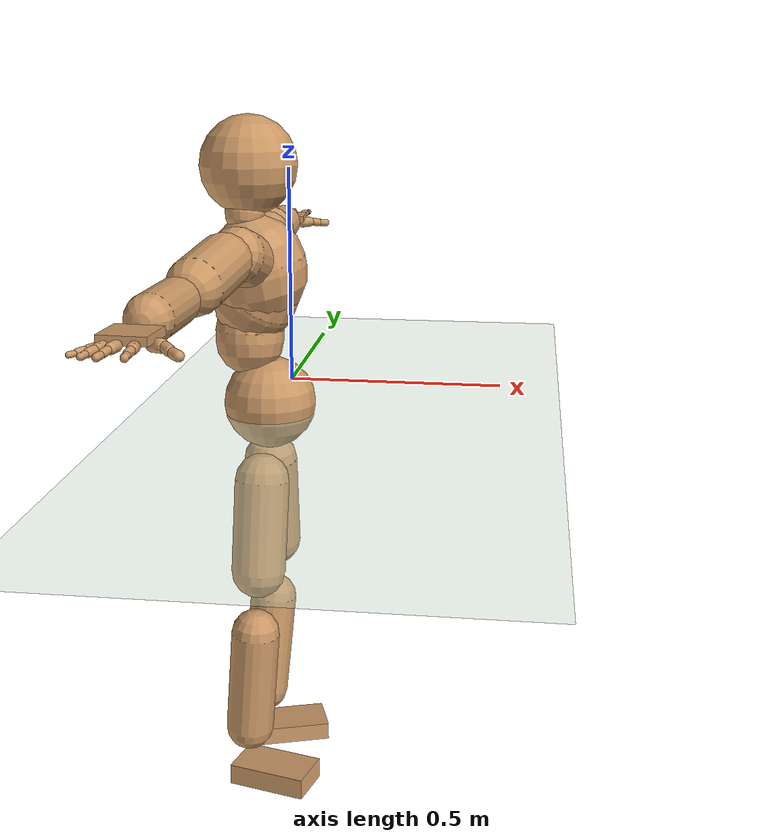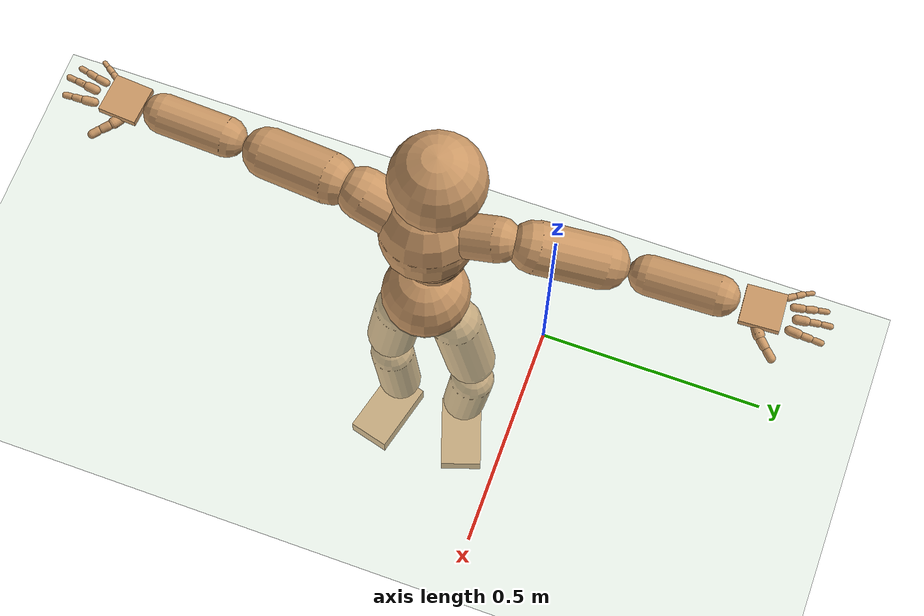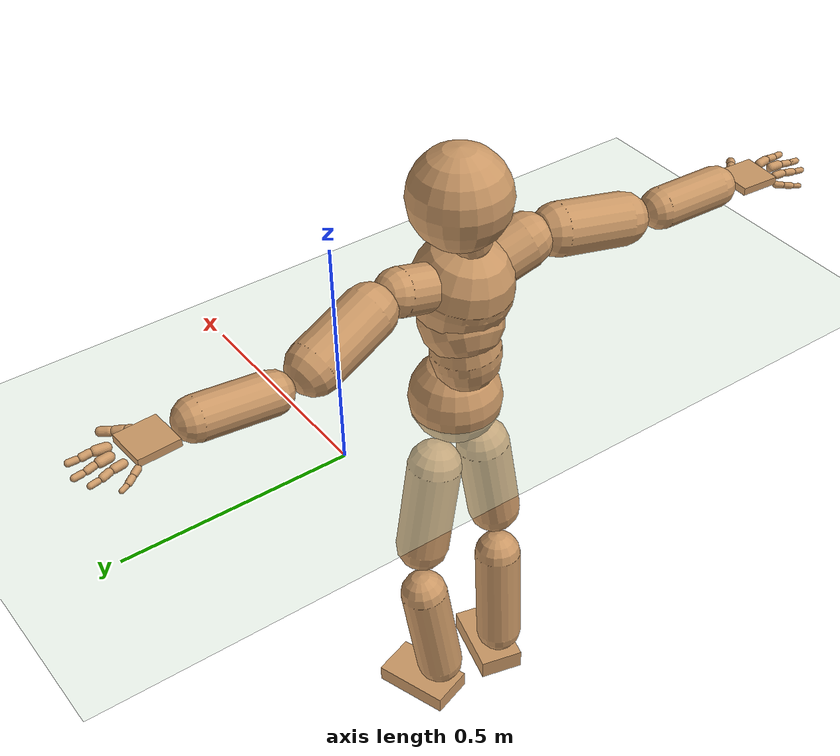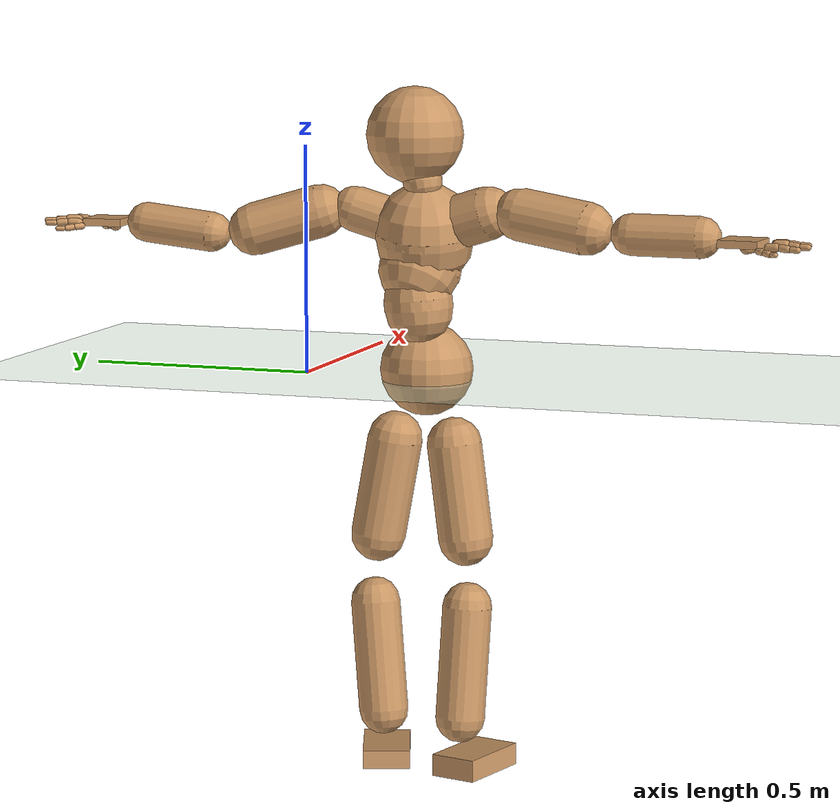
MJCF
<mujoco model="humanoid">
  <compiler coordinate="local" angle="radian"/>
  <default>
    <joint damping="0.0" armature="0.01" stiffness="0.0" limited="true"/>
    <geom conaffinity="1" condim="3" contype="7" margin="0.001" rgba="0.8 0.6 .4 1"/>
  </default>
  <asset>
    <texture type="skybox" builtin="gradient" rgb1=".4 .5 .6" rgb2="0 0 0" width="100" height="100"/>
    <texture builtin="flat" height="1278" mark="cross" markrgb="1 1 1" name="texgeom" random="0.01" rgb1="0.8 0.6 0.4" rgb2="0.8 0.6 0.4" type="cube" width="127"/>
    <texture builtin="checker" height="100" name="texplane" rgb1="0 0 0" rgb2="0.8 0.8 0.8" type="2d" width="100"/>
    <material name="MatPlane" reflectance="0.5" shininess="1" specular="1" texrepeat="60 60" texture="texplane"/>
    <material name="geom" texture="texgeom" texuniform="true"/>
  </asset>
  <worldbody>
    <light cutoff="100" diffuse="1 1 1" dir="-0 0 -1.3" directional="true" exponent="1" pos="0 0 1.3" specular=".1 .1 .1"/>
    <geom conaffinity="1" condim="3" name="floor" pos="0 0 0" rgba="0.8 0.9 0.8 1" size="100 100 .2" type="plane" material="MatPlane"/>
    <body name="Pelvis" pos="0.0015 -0.2783 0.0221">
      <freejoint name="Pelvis"/>
      <geom type="sphere" contype="1" conaffinity="1" density="500" size="0.1013" pos="0.0000 0.0000 0.0000" name="Pelvis"/>
      <body name="L_Hip" pos="-0.0146 0.0547 -0.0826">
        <joint name="L_Hip_x" type="hinge" pos="0 0 0" axis="1 0 0" stiffness="800" damping="80" armature="0.02" range="-180.0000 180.0000"/>
        <joint name="L_Hip_y" type="hinge" pos="0 0 0" axis="0 1 0" stiffness="800" damping="80" armature="0.02" range="-180.0000 180.0000"/>
        <joint name="L_Hip_z" type="hinge" pos="0 0 0" axis="0 0 1" stiffness="800" damping="80" armature="0.02" range="-180.0000 180.0000"/>
        <geom type="capsule" contype="1" conaffinity="1" density="500" fromto="-0.0005 0.0128 -0.0715 -0.0022 0.0512 -0.2860" size="0.0599" name="L_Hip"/>
        <body name="L_Knee" pos="-0.0027 0.064 -0.3575">
          <joint name="L_Knee_x" type="hinge" pos="0 0 0" axis="1 0 0" stiffness="800" damping="80" armature="0.02" range="-180.0000 180.0000"/>
          <joint name="L_Knee_y" type="hinge" pos="0 0 0" axis="0 1 0" stiffness="800" damping="80" armature="0.02" range="-180.0000 180.0000"/>
          <joint name="L_Knee_z" type="hinge" pos="0 0 0" axis="0 0 1" stiffness="800" damping="80" armature="0.02" range="-180.0000 180.0000"/>
          <geom type="capsule" contype="1" conaffinity="1" density="500" fromto="-0.0069 -0.0085 -0.0790 -0.0276 -0.0341 -0.3160" size="0.0542" name="L_Knee"/>
          <body name="L_Ankle" pos="-0.0345 -0.0426 -0.395">
            <joint name="L_Ankle_x" type="hinge" pos="0 0 0" axis="1 0 0" stiffness="800" damping="80" armature="0.02" range="-180.0000 180.0000"/>
            <joint name="L_Ankle_y" type="hinge" pos="0 0 0" axis="0 1 0" stiffness="800" damping="80" armature="0.02" range="-180.0000 180.0000"/>
            <joint name="L_Ankle_z" type="hinge" pos="0 0 0" axis="0 0 1" stiffness="800" damping="80" armature="0.02" range="-180.0000 180.0000"/>
            <geom type="box" contype="1" conaffinity="1" density="500" pos="0.0632 0.0212 -0.0279" size="0.0901 0.0516 0.0204" quat="0.9870 0.0000 0.0000 0.1609" name="L_Ankle"/>
            <body name="L_Toe" pos="0.1264 0.0423 -0.0557">
              <joint name="L_Toe_x" type="hinge" pos="0 0 0" axis="1 0 0" stiffness="500" damping="50" armature="0.02" range="-180.0000 180.0000"/>
              <joint name="L_Toe_y" type="hinge" pos="0 0 0" axis="0 1 0" stiffness="500" damping="50" armature="0.02" range="-180.0000 180.0000"/>
              <joint name="L_Toe_z" type="hinge" pos="0 0 0" axis="0 0 1" stiffness="500" damping="50" armature="0.02" range="-180.0000 180.0000"/>
              <geom type="box" contype="1" conaffinity="1" density="500" pos="0.0000 0.0000 0.0292" size="0.001 0.0025 0.0011" quat="0.9862 0.0000 0.0000 0.1655" name="L_Toe"/>
            </body>
          </body>
        </body>
      </body>
      <body name="R_Hip" pos="-0.0066 -0.0567 -0.0933">
        <joint name="R_Hip_x" type="hinge" pos="0 0 0" axis="1 0 0" stiffness="800" damping="80" armature="0.02" range="-180.0000 180.0000"/>
        <joint name="R_Hip_y" type="hinge" pos="0 0 0" axis="0 1 0" stiffness="800" damping="80" armature="0.02" range="-180.0000 180.0000"/>
        <joint name="R_Hip_z" type="hinge" pos="0 0 0" axis="0 0 1" stiffness="800" damping="80" armature="0.02" range="-180.0000 180.0000"/>
        <geom type="capsule" contype="1" conaffinity="1" density="500" fromto="-0.0022 -0.0096 -0.0684 -0.0090 -0.0383 -0.2734" size="0.0599" name="R_Hip"/>
        <body name="R_Knee" pos="-0.0112 -0.0479 -0.3418">
          <joint name="R_Knee_x" type="hinge" pos="0 0 0" axis="1 0 0" stiffness="800" damping="80" armature="0.02" range="-180.0000 180.0000"/>
          <joint name="R_Knee_y" type="hinge" pos="0 0 0" axis="0 1 0" stiffness="800" damping="80" armature="0.02" range="-180.0000 180.0000"/>
          <joint name="R_Knee_z" type="hinge" pos="0 0 0" axis="0 0 1" stiffness="800" damping="80" armature="0.02" range="-180.0000 180.0000"/>
          <geom type="capsule" contype="1" conaffinity="1" density="500" fromto="-0.0069 0.0030 -0.0814 -0.0274 0.0118 -0.3256" size="0.0541" name="R_Knee"/>
          <body name="R_Ankle" pos="-0.0343 0.0148 -0.407">
            <joint name="R_Ankle_x" type="hinge" pos="0 0 0" axis="1 0 0" stiffness="800" damping="80" armature="0.02" range="-180.0000 180.0000"/>
            <joint name="R_Ankle_y" type="hinge" pos="0 0 0" axis="0 1 0" stiffness="800" damping="80" armature="0.02" range="-180.0000 180.0000"/>
            <joint name="R_Ankle_z" type="hinge" pos="0 0 0" axis="0 0 1" stiffness="800" damping="80" armature="0.02" range="-180.0000 180.0000"/>
            <geom type="box" contype="1" conaffinity="1" density="500" pos="0.0668 -0.0172 -0.0273" size="0.0901 0.0516 0.0241" quat="0.9921 0.0000 0.0000 -0.1256" name="R_Ankle"/>
            <body name="R_Toe" pos="0.1336 -0.0344 -0.0545">
              <joint name="R_Toe_x" type="hinge" pos="0 0 0" axis="1 0 0" stiffness="500" damping="50" armature="0.02" range="-180.0000 180.0000"/>
              <joint name="R_Toe_y" type="hinge" pos="0 0 0" axis="0 1 0" stiffness="500" damping="50" armature="0.02" range="-180.0000 180.0000"/>
              <joint name="R_Toe_z" type="hinge" pos="0 0 0" axis="0 0 1" stiffness="500" damping="50" armature="0.02" range="-180.0000 180.0000"/>
              <geom type="box" contype="1" conaffinity="1" density="500" pos="0.0000 0.0000 0.0248" size="0.001 0.0025 0.0011" quat="0.9931 0.0000 0.0000 -0.1169" name="R_Toe"/>
            </body>
          </body>
        </body>
      </body>
      <body name="Torso" pos="-0.0435 -0.0006 0.0907">
        <joint name="Torso_x" type="hinge" pos="0 0 0" axis="1 0 0" stiffness="1000" damping="100" armature="0.02" range="-180.0000 180.0000"/>
        <joint name="Torso_y" type="hinge" pos="0 0 0" axis="0 1 0" stiffness="1000" damping="100" armature="0.02" range="-180.0000 180.0000"/>
        <joint name="Torso_z" type="hinge" pos="0 0 0" axis="0 0 1" stiffness="1000" damping="100" armature="0.02" range="-180.0000 180.0000"/>
        <geom type="capsule" contype="1" conaffinity="1" density="500" fromto="0.0005 0.0061 0.0673 0.0003 0.0041 0.0449" size="0.0745" name="Torso"/>
        <body name="Spine" pos="0.0008 0.0102 0.1122">
          <joint name="Spine_x" type="hinge" pos="0 0 0" axis="1 0 0" stiffness="1000" damping="100" armature="0.02" range="-180.0000 180.0000"/>
          <joint name="Spine_y" type="hinge" pos="0 0 0" axis="0 1 0" stiffness="1000" damping="100" armature="0.02" range="-180.0000 180.0000"/>
          <joint name="Spine_z" type="hinge" pos="0 0 0" axis="0 0 1" stiffness="1000" damping="100" armature="0.02" range="-180.0000 180.0000"/>
          <geom type="capsule" contype="1" conaffinity="1" density="500" fromto="0.0182 -0.0054 0.0276 0.0122 -0.0036 0.0184" size="0.0894" name="Spine"/>
          <body name="Chest" pos="0.0304 -0.009 0.046">
            <joint name="Chest_x" type="hinge" pos="0 0 0" axis="1 0 0" stiffness="1000" damping="100" armature="0.02" range="-180.0000 180.0000"/>
            <joint name="Chest_y" type="hinge" pos="0 0 0" axis="0 1 0" stiffness="1000" damping="100" armature="0.02" range="-180.0000 180.0000"/>
            <joint name="Chest_z" type="hinge" pos="0 0 0" axis="0 0 1" stiffness="1000" damping="100" armature="0.02" range="-180.0000 180.0000"/>
            <geom type="capsule" contype="1" conaffinity="1" density="500" fromto="-0.0108 -0.0034 0.0534 -0.0072 -0.0022 0.0356" size="0.1064" name="Chest"/>
            <body name="Neck" pos="-0.0349 -0.0109 0.1373">
              <joint name="Neck_x" type="hinge" pos="0 0 0" axis="1 0 0" stiffness="500" damping="50" armature="0.02" range="-180.0000 180.0000"/>
              <joint name="Neck_y" type="hinge" pos="0 0 0" axis="0 1 0" stiffness="500" damping="50" armature="0.02" range="-180.0000 180.0000"/>
              <joint name="Neck_z" type="hinge" pos="0 0 0" axis="0 0 1" stiffness="500" damping="50" armature="0.02" range="-180.0000 180.0000"/>
              <geom type="capsule" contype="1" conaffinity="1" density="500" fromto="0.0018 0.0048 0.0246 0.0071 0.0194 0.0986" size="0.0424" name="Neck"/>
              <body name="Head" pos="0.0088 0.0242 0.1232">
                <joint name="Head_x" type="hinge" pos="0 0 0" axis="1 0 0" stiffness="500" damping="50" armature="0.02" range="-180.0000 180.0000"/>
                <joint name="Head_y" type="hinge" pos="0 0 0" axis="0 1 0" stiffness="500" damping="50" armature="0.02" range="-180.0000 180.0000"/>
                <joint name="Head_z" type="hinge" pos="0 0 0" axis="0 0 1" stiffness="500" damping="50" armature="0.02" range="-180.0000 180.0000"/>
                <geom type="sphere" contype="1" conaffinity="1" density="500" size="0.1045" pos="0.0000 0.0000 0.0000" name="Head"/>
              </body>
            </body>
            <body name="L_Thorax" pos="-0.0085 0.0422 0.0644">
              <joint name="L_Thorax_x" type="hinge" pos="0 0 0" axis="1 0 0" stiffness="500" damping="50" armature="0.02" range="-180.0000 180.0000"/>
              <joint name="L_Thorax_y" type="hinge" pos="0 0 0" axis="0 1 0" stiffness="500" damping="50" armature="0.02" range="-180.0000 180.0000"/>
              <joint name="L_Thorax_z" type="hinge" pos="0 0 0" axis="0 0 1" stiffness="500" damping="50" armature="0.02" range="-180.0000 180.0000"/>
              <geom type="capsule" contype="1" conaffinity="1" density="500" fromto="-0.0020 0.0275 0.0082 -0.0079 0.1098 0.0328" size="0.0495" name="L_Thorax"/>
              <body name="L_Shoulder" pos="-0.0099 0.1373 0.041">
                <joint name="L_Shoulder_x" type="hinge" pos="0 0 0" axis="1 0 0" stiffness="500" damping="50" armature="0.02" range="-180.0000 180.0000"/>
                <joint name="L_Shoulder_y" type="hinge" pos="0 0 0" axis="0 1 0" stiffness="500" damping="50" armature="0.02" range="-180.0000 180.0000"/>
                <joint name="L_Shoulder_z" type="hinge" pos="0 0 0" axis="0 0 1" stiffness="500" damping="50" armature="0.02" range="-180.0000 180.0000"/>
                <geom type="capsule" contype="1" conaffinity="1" density="500" fromto="-0.0105 0.0473 -0.0138 -0.0419 0.1890 -0.0553" size="0.0573" name="L_Shoulder"/>
                <body name="L_Elbow" pos="-0.0523 0.2363 -0.0691">
                  <joint name="L_Elbow_x" type="hinge" pos="0 0 0" axis="1 0 0" stiffness="500" damping="50" armature="0.02" range="-720.0000 720.0000"/>
                  <joint name="L_Elbow_y" type="hinge" pos="0 0 0" axis="0 1 0" stiffness="500" damping="50" armature="0.02" range="-720.0000 720.0000"/>
                  <joint name="L_Elbow_z" type="hinge" pos="0 0 0" axis="0 0 1" stiffness="500" damping="50" armature="0.02" range="-720.0000 720.0000"/>
                  <geom type="capsule" contype="1" conaffinity="1" density="500" fromto="0.0005 0.0505 0.0053 0.0021 0.2021 0.0213" size="0.0438" name="L_Elbow"/>
                  <body name="L_Wrist" pos="0.0027 0.2527 0.0266">
                    <joint name="L_Wrist_x" type="hinge" pos="0 0 0" axis="1 0 0" stiffness="300" damping="30" armature="0.02" range="-180.0000 180.0000"/>
                    <joint name="L_Wrist_y" type="hinge" pos="0 0 0" axis="0 1 0" stiffness="300" damping="30" armature="0.02" range="-180.0000 180.0000"/>
                    <joint name="L_Wrist_z" type="hinge" pos="0 0 0" axis="0 0 1" stiffness="300" damping="30" armature="0.02" range="-180.0000 180.0000"/>
                    <geom type="box" contype="1" conaffinity="1" density="500" pos="-0.0024 0.0426 -0.0053" size="0.0431 0.0428 0.0082" quat="0.7268 0.0000 0.0000 -0.6869" name="L_Wrist"/>
                    <body name="L_Index1" pos="0.0231 0.1006 -0.0071">
                      <joint name="L_Index1_x" type="hinge" pos="0 0 0" axis="1 0 0" stiffness="100" damping="10" armature="0.02" range="-180.0000 180.0000"/>
                      <joint name="L_Index1_y" type="hinge" pos="0 0 0" axis="0 1 0" stiffness="100" damping="10" armature="0.02" range="-180.0000 180.0000"/>
                      <joint name="L_Index1_z" type="hinge" pos="0 0 0" axis="0 0 1" stiffness="100" damping="10" armature="0.02" range="-180.0000 180.0000"/>
                      <geom type="capsule" contype="1" conaffinity="1" density="500" fromto="0.0008 0.0065 0.0004 0.0031 0.0260 0.0014" size="0.0099" name="L_Index1"/>
                      <body name="L_Index2" pos="0.0039 0.0325 0.0018">
                        <joint name="L_Index2_x" type="hinge" pos="0 0 0" axis="1 0 0" stiffness="100" damping="10" armature="0.02" range="-180.0000 180.0000"/>
                        <joint name="L_Index2_y" type="hinge" pos="0 0 0" axis="0 1 0" stiffness="100" damping="10" armature="0.02" range="-180.0000 180.0000"/>
                        <joint name="L_Index2_z" type="hinge" pos="0 0 0" axis="0 0 1" stiffness="100" damping="10" armature="0.02" range="-180.0000 180.0000"/>
                        <geom type="capsule" contype="1" conaffinity="1" density="500" fromto="-0.0000 0.0046 -0.0005 -0.0002 0.0185 -0.0021" size="0.008" name="L_Index2"/>
                        <body name="L_Index3" pos="-0.0002 0.0231 -0.0026">
                          <joint name="L_Index3_x" type="hinge" pos="0 0 0" axis="1 0 0" stiffness="100" damping="10" armature="0.02" range="-180.0000 180.0000"/>
                          <joint name="L_Index3_y" type="hinge" pos="0 0 0" axis="0 1 0" stiffness="100" damping="10" armature="0.02" range="-180.0000 180.0000"/>
                          <joint name="L_Index3_z" type="hinge" pos="0 0 0" axis="0 0 1" stiffness="100" damping="10" armature="0.02" range="-180.0000 180.0000"/>
                          <geom type="capsule" contype="1" conaffinity="1" density="500" fromto="0.0004 0.0050 -0.0001 0.0014 0.0201 -0.0005" size="0.0069" name="L_Index3"/>
                        </body>
                      </body>
                    </body>
                    <body name="L_Middle1" pos="-0.0024 0.1085 -0.0046">
                      <joint name="L_Middle1_x" type="hinge" pos="0 0 0" axis="1 0 0" stiffness="100" damping="10" armature="0.02" range="-180.0000 180.0000"/>
                      <joint name="L_Middle1_y" type="hinge" pos="0 0 0" axis="0 1 0" stiffness="100" damping="10" armature="0.02" range="-180.0000 180.0000"/>
                      <joint name="L_Middle1_z" type="hinge" pos="0 0 0" axis="0 0 1" stiffness="100" damping="10" armature="0.02" range="-180.0000 180.0000"/>
                      <geom type="capsule" contype="1" conaffinity="1" density="500" fromto="-0.0009 0.0063 0.0001 -0.0036 0.0251 0.0003" size="0.0101" name="L_Middle1"/>
                      <body name="L_Middle2" pos="-0.0045 0.0314 0.0004">
                        <joint name="L_Middle2_x" type="hinge" pos="0 0 0" axis="1 0 0" stiffness="100" damping="10" armature="0.02" range="-180.0000 180.0000"/>
                        <joint name="L_Middle2_y" type="hinge" pos="0 0 0" axis="0 1 0" stiffness="100" damping="10" armature="0.02" range="-180.0000 180.0000"/>
                        <joint name="L_Middle2_z" type="hinge" pos="0 0 0" axis="0 0 1" stiffness="100" damping="10" armature="0.02" range="-180.0000 180.0000"/>
                        <geom type="capsule" contype="1" conaffinity="1" density="500" fromto="-0.0009 0.0048 -0.0005 -0.0036 0.0191 -0.0021" size="0.0074" name="L_Middle2"/>
                        <body name="L_Middle3" pos="-0.0045 0.0239 -0.0026">
                          <joint name="L_Middle3_x" type="hinge" pos="0 0 0" axis="1 0 0" stiffness="100" damping="10" armature="0.02" range="-180.0000 180.0000"/>
                          <joint name="L_Middle3_y" type="hinge" pos="0 0 0" axis="0 1 0" stiffness="100" damping="10" armature="0.02" range="-180.0000 180.0000"/>
                          <joint name="L_Middle3_z" type="hinge" pos="0 0 0" axis="0 0 1" stiffness="100" damping="10" armature="0.02" range="-180.0000 180.0000"/>
                          <geom type="capsule" contype="1" conaffinity="1" density="500" fromto="-0.0005 0.0052 -0.0001 -0.0020 0.0207 -0.0005" size="0.0066" name="L_Middle3"/>
                        </body>
                      </body>
                    </body>
                    <body name="L_Pinky1" pos="-0.0458 0.0825 -0.0139">
                      <joint name="L_Pinky1_x" type="hinge" pos="0 0 0" axis="1 0 0" stiffness="100" damping="10" armature="0.02" range="-180.0000 180.0000"/>
                      <joint name="L_Pinky1_y" type="hinge" pos="0 0 0" axis="0 1 0" stiffness="100" damping="10" armature="0.02" range="-180.0000 180.0000"/>
                      <joint name="L_Pinky1_z" type="hinge" pos="0 0 0" axis="0 0 1" stiffness="100" damping="10" armature="0.02" range="-180.0000 180.0000"/>
                      <geom type="capsule" contype="1" conaffinity="1" density="500" fromto="-0.0025 0.0034 -0.0004 -0.0100 0.0135 -0.0014" size="0.0072" name="L_Pinky1"/>
                      <body name="L_Pinky2" pos="-0.0125 0.0168 -0.0018">
                        <joint name="L_Pinky2_x" type="hinge" pos="0 0 0" axis="1 0 0" stiffness="100" damping="10" armature="0.02" range="-180.0000 180.0000"/>
                        <joint name="L_Pinky2_y" type="hinge" pos="0 0 0" axis="0 1 0" stiffness="100" damping="10" armature="0.02" range="-180.0000 180.0000"/>
                        <joint name="L_Pinky2_z" type="hinge" pos="0 0 0" axis="0 0 1" stiffness="100" damping="10" armature="0.02" range="-180.0000 180.0000"/>
                        <geom type="capsule" contype="1" conaffinity="1" density="500" fromto="-0.0023 0.0033 -0.0005 -0.0091 0.0131 -0.0018" size="0.0069" name="L_Pinky2"/>
                        <body name="L_Pinky3" pos="-0.0114 0.0164 -0.0023">
                          <joint name="L_Pinky3_x" type="hinge" pos="0 0 0" axis="1 0 0" stiffness="100" damping="10" armature="0.02" range="-180.0000 180.0000"/>
                          <joint name="L_Pinky3_y" type="hinge" pos="0 0 0" axis="0 1 0" stiffness="100" damping="10" armature="0.02" range="-180.0000 180.0000"/>
                          <joint name="L_Pinky3_z" type="hinge" pos="0 0 0" axis="0 0 1" stiffness="100" damping="10" armature="0.02" range="-180.0000 180.0000"/>
                          <geom type="capsule" contype="1" conaffinity="1" density="500" fromto="-0.0019 0.0037 -0.0001 -0.0075 0.0147 -0.0002" size="0.0052" name="L_Pinky3"/>
                        </body>
                      </body>
                    </body>
                    <body name="L_Ring1" pos="-0.0279 0.0963 -0.008">
                      <joint name="L_Ring1_x" type="hinge" pos="0 0 0" axis="1 0 0" stiffness="100" damping="10" armature="0.02" range="-180.0000 180.0000"/>
                      <joint name="L_Ring1_y" type="hinge" pos="0 0 0" axis="0 1 0" stiffness="100" damping="10" armature="0.02" range="-180.0000 180.0000"/>
                      <joint name="L_Ring1_z" type="hinge" pos="0 0 0" axis="0 0 1" stiffness="100" damping="10" armature="0.02" range="-180.0000 180.0000"/>
                      <geom type="capsule" contype="1" conaffinity="1" density="500" fromto="-0.0010 0.0058 0.0001 -0.0041 0.0234 0.0005" size="0.0085" name="L_Ring1"/>
                      <body name="L_Ring2" pos="-0.0051 0.0292 0.0006">
                        <joint name="L_Ring2_x" type="hinge" pos="0 0 0" axis="1 0 0" stiffness="100" damping="10" armature="0.02" range="-180.0000 180.0000"/>
                        <joint name="L_Ring2_y" type="hinge" pos="0 0 0" axis="0 1 0" stiffness="100" damping="10" armature="0.02" range="-180.0000 180.0000"/>
                        <joint name="L_Ring2_z" type="hinge" pos="0 0 0" axis="0 0 1" stiffness="100" damping="10" armature="0.02" range="-180.0000 180.0000"/>
                        <geom type="capsule" contype="1" conaffinity="1" density="500" fromto="-0.0014 0.0047 -0.0005 -0.0055 0.0189 -0.0020" size="0.0079" name="L_Ring2"/>
                        <body name="L_Ring3" pos="-0.0068 0.0236 -0.0025">
                          <joint name="L_Ring3_x" type="hinge" pos="0 0 0" axis="1 0 0" stiffness="100" damping="10" armature="0.02" range="-180.0000 180.0000"/>
                          <joint name="L_Ring3_y" type="hinge" pos="0 0 0" axis="0 1 0" stiffness="100" damping="10" armature="0.02" range="-180.0000 180.0000"/>
                          <joint name="L_Ring3_z" type="hinge" pos="0 0 0" axis="0 0 1" stiffness="100" damping="10" armature="0.02" range="-180.0000 180.0000"/>
                          <geom type="capsule" contype="1" conaffinity="1" density="500" fromto="-0.0010 0.0051 -0.0001 -0.0039 0.0205 -0.0004" size="0.0061" name="L_Ring3"/>
                        </body>
                      </body>
                    </body>
                    <body name="L_Thumb1" pos="0.029 0.0384 -0.019">
                      <joint name="L_Thumb1_x" type="hinge" pos="0 0 0" axis="1 0 0" stiffness="100" damping="10" armature="0.02" range="-180.0000 180.0000"/>
                      <joint name="L_Thumb1_y" type="hinge" pos="0 0 0" axis="0 1 0" stiffness="100" damping="10" armature="0.02" range="-180.0000 180.0000"/>
                      <joint name="L_Thumb1_z" type="hinge" pos="0 0 0" axis="0 0 1" stiffness="100" damping="10" armature="0.02" range="-180.0000 180.0000"/>
                      <geom type="capsule" contype="1" conaffinity="1" density="500" fromto="0.0054 0.0032 0.0004 0.0218 0.0127 0.0016" size="0.0127" name="L_Thumb1"/>
                      <body name="L_Thumb2" pos="0.0272 0.0159 0.002">
                        <joint name="L_Thumb2_x" type="hinge" pos="0 0 0" axis="1 0 0" stiffness="100" damping="10" armature="0.02" range="-180.0000 180.0000"/>
                        <joint name="L_Thumb2_y" type="hinge" pos="0 0 0" axis="0 1 0" stiffness="100" damping="10" armature="0.02" range="-180.0000 180.0000"/>
                        <joint name="L_Thumb2_z" type="hinge" pos="0 0 0" axis="0 0 1" stiffness="100" damping="10" armature="0.02" range="-180.0000 180.0000"/>
                        <geom type="capsule" contype="1" conaffinity="1" density="500" fromto="0.0034 0.0038 -0.0010 0.0137 0.0152 -0.0042" size="0.0101" name="L_Thumb2"/>
                        <body name="L_Thumb3" pos="0.0171 0.019 -0.0052">
                          <joint name="L_Thumb3_x" type="hinge" pos="0 0 0" axis="1 0 0" stiffness="100" damping="10" armature="0.02" range="-180.0000 180.0000"/>
                          <joint name="L_Thumb3_y" type="hinge" pos="0 0 0" axis="0 1 0" stiffness="100" damping="10" armature="0.02" range="-180.0000 180.0000"/>
                          <joint name="L_Thumb3_z" type="hinge" pos="0 0 0" axis="0 0 1" stiffness="100" damping="10" armature="0.02" range="-180.0000 180.0000"/>
                          <geom type="capsule" contype="1" conaffinity="1" density="500" fromto="0.0038 0.0042 -0.0006 0.0153 0.0168 -0.0026" size="0.0094" name="L_Thumb3"/>
                        </body>
                      </body>
                    </body>
                  </body>
                </body>
              </body>
            </body>
            <body name="R_Thorax" pos="-0.0104 -0.0481 0.0652">
              <joint name="R_Thorax_x" type="hinge" pos="0 0 0" axis="1 0 0" stiffness="500" damping="50" armature="0.02" range="-180.0000 180.0000"/>
              <joint name="R_Thorax_y" type="hinge" pos="0 0 0" axis="0 1 0" stiffness="500" damping="50" armature="0.02" range="-180.0000 180.0000"/>
              <joint name="R_Thorax_z" type="hinge" pos="0 0 0" axis="0 0 1" stiffness="500" damping="50" armature="0.02" range="-180.0000 180.0000"/>
              <geom type="capsule" contype="1" conaffinity="1" density="500" fromto="-0.0024 -0.0252 0.0080 -0.0098 -0.1008 0.0322" size="0.0578" name="R_Thorax"/>
              <body name="R_Shoulder" pos="-0.0122 -0.126 0.0402">
                <joint name="R_Shoulder_x" type="hinge" pos="0 0 0" axis="1 0 0" stiffness="500" damping="50" armature="0.02" range="-180.0000 180.0000"/>
                <joint name="R_Shoulder_y" type="hinge" pos="0 0 0" axis="0 1 0" stiffness="500" damping="50" armature="0.02" range="-180.0000 180.0000"/>
                <joint name="R_Shoulder_z" type="hinge" pos="0 0 0" axis="0 0 1" stiffness="500" damping="50" armature="0.02" range="-180.0000 180.0000"/>
                <geom type="capsule" contype="1" conaffinity="1" density="500" fromto="-0.0069 -0.0506 -0.0076 -0.0276 -0.2024 -0.0306" size="0.0566" name="R_Shoulder"/>
                <body name="R_Elbow" pos="-0.0346 -0.253 -0.0382">
                  <joint name="R_Elbow_x" type="hinge" pos="0 0 0" axis="1 0 0" stiffness="500" damping="50" armature="0.02" range="-720.0000 720.0000"/>
                  <joint name="R_Elbow_y" type="hinge" pos="0 0 0" axis="0 1 0" stiffness="500" damping="50" armature="0.02" range="-720.0000 720.0000"/>
                  <joint name="R_Elbow_z" type="hinge" pos="0 0 0" axis="0 0 1" stiffness="500" damping="50" armature="0.02" range="-720.0000 720.0000"/>
                  <geom type="capsule" contype="1" conaffinity="1" density="500" fromto="-0.0020 -0.0492 -0.0001 -0.0078 -0.1969 -0.0004" size="0.0447" name="R_Elbow"/>
                  <body name="R_Wrist" pos="-0.0098 -0.2461 -0.0005">
                    <joint name="R_Wrist_x" type="hinge" pos="0 0 0" axis="1 0 0" stiffness="300" damping="30" armature="0.02" range="-180.0000 180.0000"/>
                    <joint name="R_Wrist_y" type="hinge" pos="0 0 0" axis="0 1 0" stiffness="300" damping="30" armature="0.02" range="-180.0000 180.0000"/>
                    <joint name="R_Wrist_z" type="hinge" pos="0 0 0" axis="0 0 1" stiffness="300" damping="30" armature="0.02" range="-180.0000 180.0000"/>
                    <geom type="box" contype="1" conaffinity="1" density="500" pos="-0.0030 -0.0424 -0.0071" size="0.0431 0.0441 0.0083" quat="0.7315 0.0000 0.0000 0.6818" name="R_Wrist"/>
                    <body name="R_Index1" pos="0.0219 -0.1001 -0.0109">
                      <joint name="R_Index1_x" type="hinge" pos="0 0 0" axis="1 0 0" stiffness="100" damping="10" armature="0.02" range="-180.0000 180.0000"/>
                      <joint name="R_Index1_y" type="hinge" pos="0 0 0" axis="0 1 0" stiffness="100" damping="10" armature="0.02" range="-180.0000 180.0000"/>
                      <joint name="R_Index1_z" type="hinge" pos="0 0 0" axis="0 0 1" stiffness="100" damping="10" armature="0.02" range="-180.0000 180.0000"/>
                      <geom type="capsule" contype="1" conaffinity="1" density="500" fromto="0.0008 -0.0065 0.0004 0.0031 -0.0260 0.0014" size="0.0099" name="R_Index1"/>
                      <body name="R_Index2" pos="0.0039 -0.0325 0.0018">
                        <joint name="R_Index2_x" type="hinge" pos="0 0 0" axis="1 0 0" stiffness="100" damping="10" armature="0.02" range="-180.0000 180.0000"/>
                        <joint name="R_Index2_y" type="hinge" pos="0 0 0" axis="0 1 0" stiffness="100" damping="10" armature="0.02" range="-180.0000 180.0000"/>
                        <joint name="R_Index2_z" type="hinge" pos="0 0 0" axis="0 0 1" stiffness="100" damping="10" armature="0.02" range="-180.0000 180.0000"/>
                        <geom type="capsule" contype="1" conaffinity="1" density="500" fromto="-0.0000 -0.0046 -0.0005 -0.0002 -0.0185 -0.0021" size="0.008" name="R_Index2"/>
                        <body name="R_Index3" pos="-0.0002 -0.0231 -0.0026">
                          <joint name="R_Index3_x" type="hinge" pos="0 0 0" axis="1 0 0" stiffness="100" damping="10" armature="0.02" range="-180.0000 180.0000"/>
                          <joint name="R_Index3_y" type="hinge" pos="0 0 0" axis="0 1 0" stiffness="100" damping="10" armature="0.02" range="-180.0000 180.0000"/>
                          <joint name="R_Index3_z" type="hinge" pos="0 0 0" axis="0 0 1" stiffness="100" damping="10" armature="0.02" range="-180.0000 180.0000"/>
                          <geom type="capsule" contype="1" conaffinity="1" density="500" fromto="0.0004 -0.0042 -0.0001 0.0014 -0.0169 -0.0005" size="0.0072" name="R_Index3"/>
                        </body>
                      </body>
                    </body>
                    <body name="R_Middle1" pos="-0.0036 -0.108 -0.0083">
                      <joint name="R_Middle1_x" type="hinge" pos="0 0 0" axis="1 0 0" stiffness="100" damping="10" armature="0.02" range="-180.0000 180.0000"/>
                      <joint name="R_Middle1_y" type="hinge" pos="0 0 0" axis="0 1 0" stiffness="100" damping="10" armature="0.02" range="-180.0000 180.0000"/>
                      <joint name="R_Middle1_z" type="hinge" pos="0 0 0" axis="0 0 1" stiffness="100" damping="10" armature="0.02" range="-180.0000 180.0000"/>
                      <geom type="capsule" contype="1" conaffinity="1" density="500" fromto="-0.0009 -0.0063 0.0001 -0.0036 -0.0251 0.0003" size="0.0101" name="R_Middle1"/>
                      <body name="R_Middle2" pos="-0.0045 -0.0314 0.0004">
                        <joint name="R_Middle2_x" type="hinge" pos="0 0 0" axis="1 0 0" stiffness="100" damping="10" armature="0.02" range="-180.0000 180.0000"/>
                        <joint name="R_Middle2_y" type="hinge" pos="0 0 0" axis="0 1 0" stiffness="100" damping="10" armature="0.02" range="-180.0000 180.0000"/>
                        <joint name="R_Middle2_z" type="hinge" pos="0 0 0" axis="0 0 1" stiffness="100" damping="10" armature="0.02" range="-180.0000 180.0000"/>
                        <geom type="capsule" contype="1" conaffinity="1" density="500" fromto="-0.0009 -0.0048 -0.0005 -0.0036 -0.0191 -0.0021" size="0.0074" name="R_Middle2"/>
                        <body name="R_Middle3" pos="-0.0045 -0.0239 -0.0026">
                          <joint name="R_Middle3_x" type="hinge" pos="0 0 0" axis="1 0 0" stiffness="100" damping="10" armature="0.02" range="-180.0000 180.0000"/>
                          <joint name="R_Middle3_y" type="hinge" pos="0 0 0" axis="0 1 0" stiffness="100" damping="10" armature="0.02" range="-180.0000 180.0000"/>
                          <joint name="R_Middle3_z" type="hinge" pos="0 0 0" axis="0 0 1" stiffness="100" damping="10" armature="0.02" range="-180.0000 180.0000"/>
                          <geom type="capsule" contype="1" conaffinity="1" density="500" fromto="-0.0005 -0.0044 -0.0001 -0.0020 -0.0175 -0.0005" size="0.0069" name="R_Middle3"/>
                        </body>
                      </body>
                    </body>
                    <body name="R_Pinky1" pos="-0.0469 -0.082 -0.0177">
                      <joint name="R_Pinky1_x" type="hinge" pos="0 0 0" axis="1 0 0" stiffness="100" damping="10" armature="0.02" range="-180.0000 180.0000"/>
                      <joint name="R_Pinky1_y" type="hinge" pos="0 0 0" axis="0 1 0" stiffness="100" damping="10" armature="0.02" range="-180.0000 180.0000"/>
                      <joint name="R_Pinky1_z" type="hinge" pos="0 0 0" axis="0 0 1" stiffness="100" damping="10" armature="0.02" range="-180.0000 180.0000"/>
                      <geom type="capsule" contype="1" conaffinity="1" density="500" fromto="-0.0025 -0.0034 -0.0004 -0.0100 -0.0135 -0.0014" size="0.0072" name="R_Pinky1"/>
                      <body name="R_Pinky2" pos="-0.0125 -0.0168 -0.0018">
                        <joint name="R_Pinky2_x" type="hinge" pos="0 0 0" axis="1 0 0" stiffness="100" damping="10" armature="0.02" range="-180.0000 180.0000"/>
                        <joint name="R_Pinky2_y" type="hinge" pos="0 0 0" axis="0 1 0" stiffness="100" damping="10" armature="0.02" range="-180.0000 180.0000"/>
                        <joint name="R_Pinky2_z" type="hinge" pos="0 0 0" axis="0 0 1" stiffness="100" damping="10" armature="0.02" range="-180.0000 180.0000"/>
                        <geom type="capsule" contype="1" conaffinity="1" density="500" fromto="-0.0023 -0.0033 -0.0005 -0.0091 -0.0131 -0.0018" size="0.0069" name="R_Pinky2"/>
                        <body name="R_Pinky3" pos="-0.0114 -0.0164 -0.0023">
                          <joint name="R_Pinky3_x" type="hinge" pos="0 0 0" axis="1 0 0" stiffness="100" damping="10" armature="0.02" range="-180.0000 180.0000"/>
                          <joint name="R_Pinky3_y" type="hinge" pos="0 0 0" axis="0 1 0" stiffness="100" damping="10" armature="0.02" range="-180.0000 180.0000"/>
                          <joint name="R_Pinky3_z" type="hinge" pos="0 0 0" axis="0 0 1" stiffness="100" damping="10" armature="0.02" range="-180.0000 180.0000"/>
                          <geom type="capsule" contype="1" conaffinity="1" density="500" fromto="-0.0019 -0.0029 -0.0001 -0.0075 -0.0115 -0.0002" size="0.0054" name="R_Pinky3"/>
                        </body>
                      </body>
                    </body>
                    <body name="R_Ring1" pos="-0.029 -0.0958 -0.0117">
                      <joint name="R_Ring1_x" type="hinge" pos="0 0 0" axis="1 0 0" stiffness="100" damping="10" armature="0.02" range="-180.0000 180.0000"/>
                      <joint name="R_Ring1_y" type="hinge" pos="0 0 0" axis="0 1 0" stiffness="100" damping="10" armature="0.02" range="-180.0000 180.0000"/>
                      <joint name="R_Ring1_z" type="hinge" pos="0 0 0" axis="0 0 1" stiffness="100" damping="10" armature="0.02" range="-180.0000 180.0000"/>
                      <geom type="capsule" contype="1" conaffinity="1" density="500" fromto="-0.0010 -0.0058 0.0001 -0.0041 -0.0234 0.0005" size="0.0085" name="R_Ring1"/>
                      <body name="R_Ring2" pos="-0.0051 -0.0292 0.0006">
                        <joint name="R_Ring2_x" type="hinge" pos="0 0 0" axis="1 0 0" stiffness="100" damping="10" armature="0.02" range="-180.0000 180.0000"/>
                        <joint name="R_Ring2_y" type="hinge" pos="0 0 0" axis="0 1 0" stiffness="100" damping="10" armature="0.02" range="-180.0000 180.0000"/>
                        <joint name="R_Ring2_z" type="hinge" pos="0 0 0" axis="0 0 1" stiffness="100" damping="10" armature="0.02" range="-180.0000 180.0000"/>
                        <geom type="capsule" contype="1" conaffinity="1" density="500" fromto="-0.0014 -0.0047 -0.0005 -0.0055 -0.0189 -0.0020" size="0.0079" name="R_Ring2"/>
                        <body name="R_Ring3" pos="-0.0068 -0.0236 -0.0025">
                          <joint name="R_Ring3_x" type="hinge" pos="0 0 0" axis="1 0 0" stiffness="100" damping="10" armature="0.02" range="-180.0000 180.0000"/>
                          <joint name="R_Ring3_y" type="hinge" pos="0 0 0" axis="0 1 0" stiffness="100" damping="10" armature="0.02" range="-180.0000 180.0000"/>
                          <joint name="R_Ring3_z" type="hinge" pos="0 0 0" axis="0 0 1" stiffness="100" damping="10" armature="0.02" range="-180.0000 180.0000"/>
                          <geom type="capsule" contype="1" conaffinity="1" density="500" fromto="-0.0010 -0.0043 -0.0001 -0.0039 -0.0173 -0.0004" size="0.0064" name="R_Ring3"/>
                        </body>
                      </body>
                    </body>
                    <body name="R_Thumb1" pos="0.0278 -0.0379 -0.0227">
                      <joint name="R_Thumb1_x" type="hinge" pos="0 0 0" axis="1 0 0" stiffness="100" damping="10" armature="0.02" range="-180.0000 180.0000"/>
                      <joint name="R_Thumb1_y" type="hinge" pos="0 0 0" axis="0 1 0" stiffness="100" damping="10" armature="0.02" range="-180.0000 180.0000"/>
                      <joint name="R_Thumb1_z" type="hinge" pos="0 0 0" axis="0 0 1" stiffness="100" damping="10" armature="0.02" range="-180.0000 180.0000"/>
                      <geom type="capsule" contype="1" conaffinity="1" density="500" fromto="0.0054 -0.0032 0.0004 0.0218 -0.0127 0.0016" size="0.0127" name="R_Thumb1"/>
                      <body name="R_Thumb2" pos="0.0272 -0.0159 0.002">
                        <joint name="R_Thumb2_x" type="hinge" pos="0 0 0" axis="1 0 0" stiffness="100" damping="10" armature="0.02" range="-180.0000 180.0000"/>
                        <joint name="R_Thumb2_y" type="hinge" pos="0 0 0" axis="0 1 0" stiffness="100" damping="10" armature="0.02" range="-180.0000 180.0000"/>
                        <joint name="R_Thumb2_z" type="hinge" pos="0 0 0" axis="0 0 1" stiffness="100" damping="10" armature="0.02" range="-180.0000 180.0000"/>
                        <geom type="capsule" contype="1" conaffinity="1" density="500" fromto="0.0034 -0.0038 -0.0010 0.0137 -0.0152 -0.0042" size="0.0101" name="R_Thumb2"/>
                        <body name="R_Thumb3" pos="0.0171 -0.019 -0.0052">
                          <joint name="R_Thumb3_x" type="hinge" pos="0 0 0" axis="1 0 0" stiffness="100" damping="10" armature="0.02" range="-180.0000 180.0000"/>
                          <joint name="R_Thumb3_y" type="hinge" pos="0 0 0" axis="0 1 0" stiffness="100" damping="10" armature="0.02" range="-180.0000 180.0000"/>
                          <joint name="R_Thumb3_z" type="hinge" pos="0 0 0" axis="0 0 1" stiffness="100" damping="10" armature="0.02" range="-180.0000 180.0000"/>
                          <geom type="capsule" contype="1" conaffinity="1" density="500" fromto="0.0038 -0.0034 -0.0006 0.0153 -0.0136 -0.0026" size="0.0096" name="R_Thumb3"/>
                        </body>
                      </body>
                    </body>
                  </body>
                </body>
              </body>
            </body>
          </body>
        </body>
      </body>
    </body>
  </worldbody>
  <actuator>
    <motor name="L_Hip_x" joint="L_Hip_x" gear="500"/>
    <motor name="L_Hip_y" joint="L_Hip_y" gear="500"/>
    <motor name="L_Hip_z" joint="L_Hip_z" gear="500"/>
    <motor name="L_Knee_x" joint="L_Knee_x" gear="500"/>
    <motor name="L_Knee_y" joint="L_Knee_y" gear="500"/>
    <motor name="L_Knee_z" joint="L_Knee_z" gear="500"/>
    <motor name="L_Ankle_x" joint="L_Ankle_x" gear="500"/>
    <motor name="L_Ankle_y" joint="L_Ankle_y" gear="500"/>
    <motor name="L_Ankle_z" joint="L_Ankle_z" gear="500"/>
    <motor name="L_Toe_x" joint="L_Toe_x" gear="500"/>
    <motor name="L_Toe_y" joint="L_Toe_y" gear="500"/>
    <motor name="L_Toe_z" joint="L_Toe_z" gear="500"/>
    <motor name="R_Hip_x" joint="R_Hip_x" gear="500"/>
    <motor name="R_Hip_y" joint="R_Hip_y" gear="500"/>
    <motor name="R_Hip_z" joint="R_Hip_z" gear="500"/>
    <motor name="R_Knee_x" joint="R_Knee_x" gear="500"/>
    <motor name="R_Knee_y" joint="R_Knee_y" gear="500"/>
    <motor name="R_Knee_z" joint="R_Knee_z" gear="500"/>
    <motor name="R_Ankle_x" joint="R_Ankle_x" gear="500"/>
    <motor name="R_Ankle_y" joint="R_Ankle_y" gear="500"/>
    <motor name="R_Ankle_z" joint="R_Ankle_z" gear="500"/>
    <motor name="R_Toe_x" joint="R_Toe_x" gear="500"/>
    <motor name="R_Toe_y" joint="R_Toe_y" gear="500"/>
    <motor name="R_Toe_z" joint="R_Toe_z" gear="500"/>
    <motor name="Torso_x" joint="Torso_x" gear="500"/>
    <motor name="Torso_y" joint="Torso_y" gear="500"/>
    <motor name="Torso_z" joint="Torso_z" gear="500"/>
    <motor name="Spine_x" joint="Spine_x" gear="500"/>
    <motor name="Spine_y" joint="Spine_y" gear="500"/>
    <motor name="Spine_z" joint="Spine_z" gear="500"/>
    <motor name="Chest_x" joint="Chest_x" gear="500"/>
    <motor name="Chest_y" joint="Chest_y" gear="500"/>
    <motor name="Chest_z" joint="Chest_z" gear="500"/>
    <motor name="Neck_x" joint="Neck_x" gear="500"/>
    <motor name="Neck_y" joint="Neck_y" gear="500"/>
    <motor name="Neck_z" joint="Neck_z" gear="500"/>
    <motor name="Head_x" joint="Head_x" gear="500"/>
    <motor name="Head_y" joint="Head_y" gear="500"/>
    <motor name="Head_z" joint="Head_z" gear="500"/>
    <motor name="L_Thorax_x" joint="L_Thorax_x" gear="500"/>
    <motor name="L_Thorax_y" joint="L_Thorax_y" gear="500"/>
    <motor name="L_Thorax_z" joint="L_Thorax_z" gear="500"/>
    <motor name="L_Shoulder_x" joint="L_Shoulder_x" gear="500"/>
    <motor name="L_Shoulder_y" joint="L_Shoulder_y" gear="500"/>
    <motor name="L_Shoulder_z" joint="L_Shoulder_z" gear="500"/>
    <motor name="L_Elbow_x" joint="L_Elbow_x" gear="500"/>
    <motor name="L_Elbow_y" joint="L_Elbow_y" gear="500"/>
    <motor name="L_Elbow_z" joint="L_Elbow_z" gear="500"/>
    <motor name="L_Wrist_x" joint="L_Wrist_x" gear="500"/>
    <motor name="L_Wrist_y" joint="L_Wrist_y" gear="500"/>
    <motor name="L_Wrist_z" joint="L_Wrist_z" gear="500"/>
    <motor name="L_Index1_x" joint="L_Index1_x" gear="500"/>
    <motor name="L_Index1_y" joint="L_Index1_y" gear="500"/>
    <motor name="L_Index1_z" joint="L_Index1_z" gear="500"/>
    <motor name="L_Index2_x" joint="L_Index2_x" gear="500"/>
    <motor name="L_Index2_y" joint="L_Index2_y" gear="500"/>
    <motor name="L_Index2_z" joint="L_Index2_z" gear="500"/>
    <motor name="L_Index3_x" joint="L_Index3_x" gear="500"/>
    <motor name="L_Index3_y" joint="L_Index3_y" gear="500"/>
    <motor name="L_Index3_z" joint="L_Index3_z" gear="500"/>
    <motor name="L_Middle1_x" joint="L_Middle1_x" gear="500"/>
    <motor name="L_Middle1_y" joint="L_Middle1_y" gear="500"/>
    <motor name="L_Middle1_z" joint="L_Middle1_z" gear="500"/>
    <motor name="L_Middle2_x" joint="L_Middle2_x" gear="500"/>
    <motor name="L_Middle2_y" joint="L_Middle2_y" gear="500"/>
    <motor name="L_Middle2_z" joint="L_Middle2_z" gear="500"/>
    <motor name="L_Middle3_x" joint="L_Middle3_x" gear="500"/>
    <motor name="L_Middle3_y" joint="L_Middle3_y" gear="500"/>
    <motor name="L_Middle3_z" joint="L_Middle3_z" gear="500"/>
    <motor name="L_Pinky1_x" joint="L_Pinky1_x" gear="500"/>
    <motor name="L_Pinky1_y" joint="L_Pinky1_y" gear="500"/>
    <motor name="L_Pinky1_z" joint="L_Pinky1_z" gear="500"/>
    <motor name="L_Pinky2_x" joint="L_Pinky2_x" gear="500"/>
    <motor name="L_Pinky2_y" joint="L_Pinky2_y" gear="500"/>
    <motor name="L_Pinky2_z" joint="L_Pinky2_z" gear="500"/>
    <motor name="L_Pinky3_x" joint="L_Pinky3_x" gear="500"/>
    <motor name="L_Pinky3_y" joint="L_Pinky3_y" gear="500"/>
    <motor name="L_Pinky3_z" joint="L_Pinky3_z" gear="500"/>
    <motor name="L_Ring1_x" joint="L_Ring1_x" gear="500"/>
    <motor name="L_Ring1_y" joint="L_Ring1_y" gear="500"/>
    <motor name="L_Ring1_z" joint="L_Ring1_z" gear="500"/>
    <motor name="L_Ring2_x" joint="L_Ring2_x" gear="500"/>
    <motor name="L_Ring2_y" joint="L_Ring2_y" gear="500"/>
    <motor name="L_Ring2_z" joint="L_Ring2_z" gear="500"/>
    <motor name="L_Ring3_x" joint="L_Ring3_x" gear="500"/>
    <motor name="L_Ring3_y" joint="L_Ring3_y" gear="500"/>
    <motor name="L_Ring3_z" joint="L_Ring3_z" gear="500"/>
    <motor name="L_Thumb1_x" joint="L_Thumb1_x" gear="500"/>
    <motor name="L_Thumb1_y" joint="L_Thumb1_y" gear="500"/>
    <motor name="L_Thumb1_z" joint="L_Thumb1_z" gear="500"/>
    <motor name="L_Thumb2_x" joint="L_Thumb2_x" gear="500"/>
    <motor name="L_Thumb2_y" joint="L_Thumb2_y" gear="500"/>
    <motor name="L_Thumb2_z" joint="L_Thumb2_z" gear="500"/>
    <motor name="L_Thumb3_x" joint="L_Thumb3_x" gear="500"/>
    <motor name="L_Thumb3_y" joint="L_Thumb3_y" gear="500"/>
    <motor name="L_Thumb3_z" joint="L_Thumb3_z" gear="500"/>
    <motor name="R_Thorax_x" joint="R_Thorax_x" gear="500"/>
    <motor name="R_Thorax_y" joint="R_Thorax_y" gear="500"/>
    <motor name="R_Thorax_z" joint="R_Thorax_z" gear="500"/>
    <motor name="R_Shoulder_x" joint="R_Shoulder_x" gear="500"/>
    <motor name="R_Shoulder_y" joint="R_Shoulder_y" gear="500"/>
    <motor name="R_Shoulder_z" joint="R_Shoulder_z" gear="500"/>
    <motor name="R_Elbow_x" joint="R_Elbow_x" gear="500"/>
    <motor name="R_Elbow_y" joint="R_Elbow_y" gear="500"/>
    <motor name="R_Elbow_z" joint="R_Elbow_z" gear="500"/>
    <motor name="R_Wrist_x" joint="R_Wrist_x" gear="500"/>
    <motor name="R_Wrist_y" joint="R_Wrist_y" gear="500"/>
    <motor name="R_Wrist_z" joint="R_Wrist_z" gear="500"/>
    <motor name="R_Index1_x" joint="R_Index1_x" gear="500"/>
    <motor name="R_Index1_y" joint="R_Index1_y" gear="500"/>
    <motor name="R_Index1_z" joint="R_Index1_z" gear="500"/>
    <motor name="R_Index2_x" joint="R_Index2_x" gear="500"/>
    <motor name="R_Index2_y" joint="R_Index2_y" gear="500"/>
    <motor name="R_Index2_z" joint="R_Index2_z" gear="500"/>
    <motor name="R_Index3_x" joint="R_Index3_x" gear="500"/>
    <motor name="R_Index3_y" joint="R_Index3_y" gear="500"/>
    <motor name="R_Index3_z" joint="R_Index3_z" gear="500"/>
    <motor name="R_Middle1_x" joint="R_Middle1_x" gear="500"/>
    <motor name="R_Middle1_y" joint="R_Middle1_y" gear="500"/>
    <motor name="R_Middle1_z" joint="R_Middle1_z" gear="500"/>
    <motor name="R_Middle2_x" joint="R_Middle2_x" gear="500"/>
    <motor name="R_Middle2_y" joint="R_Middle2_y" gear="500"/>
    <motor name="R_Middle2_z" joint="R_Middle2_z" gear="500"/>
    <motor name="R_Middle3_x" joint="R_Middle3_x" gear="500"/>
    <motor name="R_Middle3_y" joint="R_Middle3_y" gear="500"/>
    <motor name="R_Middle3_z" joint="R_Middle3_z" gear="500"/>
    <motor name="R_Pinky1_x" joint="R_Pinky1_x" gear="500"/>
    <motor name="R_Pinky1_y" joint="R_Pinky1_y" gear="500"/>
    <motor name="R_Pinky1_z" joint="R_Pinky1_z" gear="500"/>
    <motor name="R_Pinky2_x" joint="R_Pinky2_x" gear="500"/>
    <motor name="R_Pinky2_y" joint="R_Pinky2_y" gear="500"/>
    <motor name="R_Pinky2_z" joint="R_Pinky2_z" gear="500"/>
    <motor name="R_Pinky3_x" joint="R_Pinky3_x" gear="500"/>
    <motor name="R_Pinky3_y" joint="R_Pinky3_y" gear="500"/>
    <motor name="R_Pinky3_z" joint="R_Pinky3_z" gear="500"/>
    <motor name="R_Ring1_x" joint="R_Ring1_x" gear="500"/>
    <motor name="R_Ring1_y" joint="R_Ring1_y" gear="500"/>
    <motor name="R_Ring1_z" joint="R_Ring1_z" gear="500"/>
    <motor name="R_Ring2_x" joint="R_Ring2_x" gear="500"/>
    <motor name="R_Ring2_y" joint="R_Ring2_y" gear="500"/>
    <motor name="R_Ring2_z" joint="R_Ring2_z" gear="500"/>
    <motor name="R_Ring3_x" joint="R_Ring3_x" gear="500"/>
    <motor name="R_Ring3_y" joint="R_Ring3_y" gear="500"/>
    <motor name="R_Ring3_z" joint="R_Ring3_z" gear="500"/>
    <motor name="R_Thumb1_x" joint="R_Thumb1_x" gear="500"/>
    <motor name="R_Thumb1_y" joint="R_Thumb1_y" gear="500"/>
    <motor name="R_Thumb1_z" joint="R_Thumb1_z" gear="500"/>
    <motor name="R_Thumb2_x" joint="R_Thumb2_x" gear="500"/>
    <motor name="R_Thumb2_y" joint="R_Thumb2_y" gear="500"/>
    <motor name="R_Thumb2_z" joint="R_Thumb2_z" gear="500"/>
    <motor name="R_Thumb3_x" joint="R_Thumb3_x" gear="500"/>
    <motor name="R_Thumb3_y" joint="R_Thumb3_y" gear="500"/>
    <motor name="R_Thumb3_z" joint="R_Thumb3_z" gear="500"/>
  </actuator>
  <contact>
    <exclude body1="Torso" body2="Chest"/>
    <exclude body1="Head" body2="Chest"/>
    <exclude body1="R_Knee" body2="R_Toe"/>
    <exclude body1="R_Knee" body2="L_Ankle"/>
    <exclude body1="R_Knee" body2="L_Toe"/>
    <exclude body1="L_Knee" body2="L_Toe"/>
    <exclude body1="L_Knee" body2="R_Ankle"/>
    <exclude body1="L_Knee" body2="R_Toe"/>
    <exclude body1="L_Shoulder" body2="Chest"/>
    <exclude body1="R_Shoulder" body2="Chest"/>
  </contact>
  <sensor/>
  <size njmax="700" nconmax="700"/>
</mujoco>
